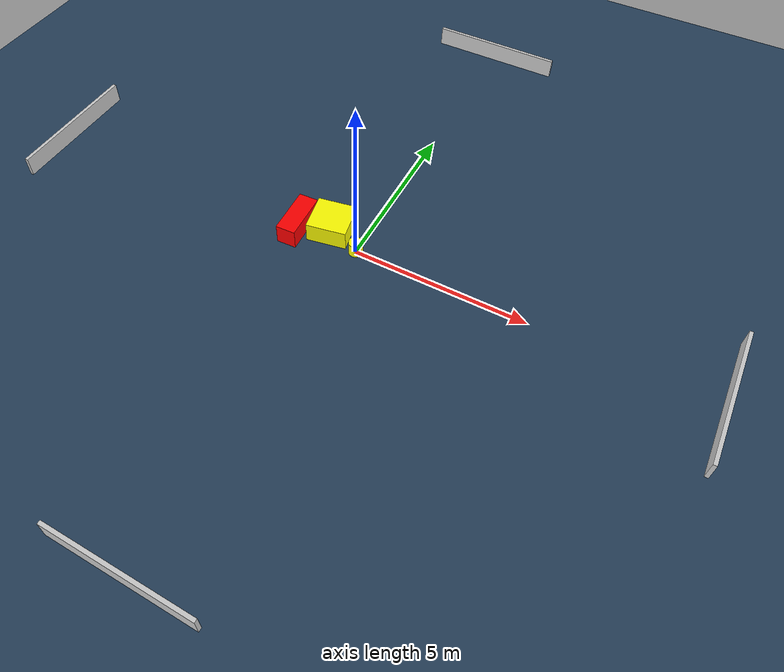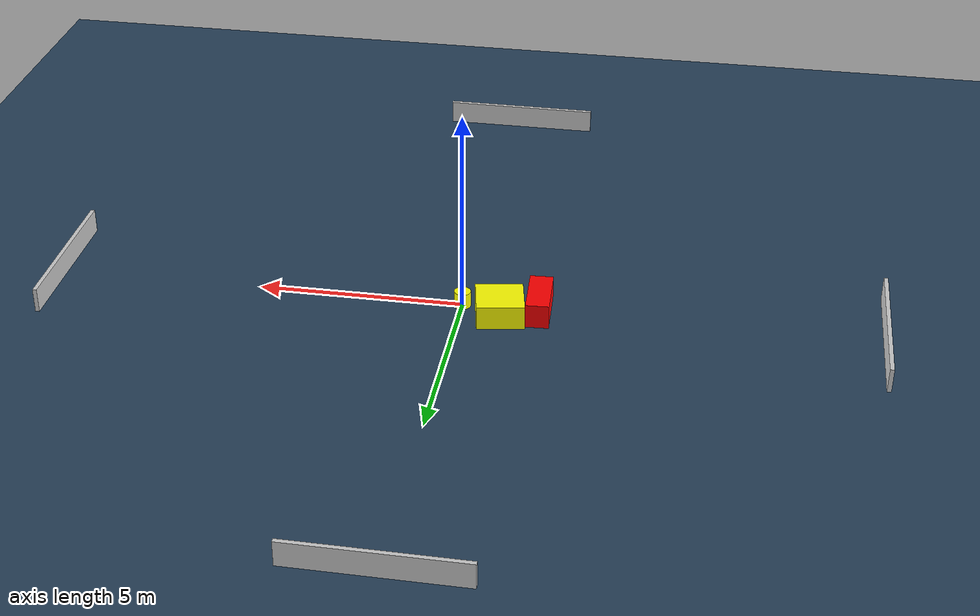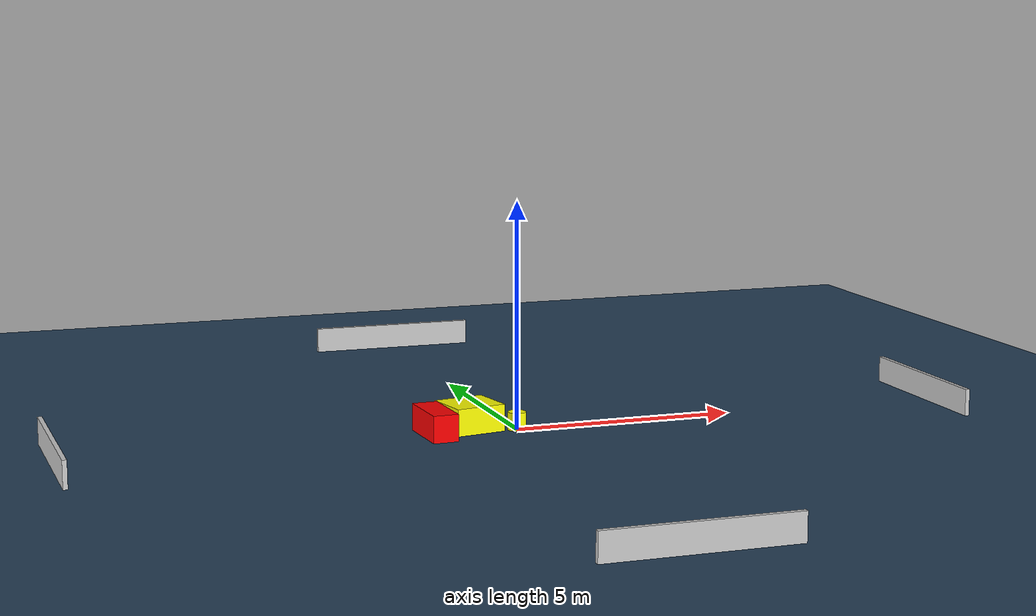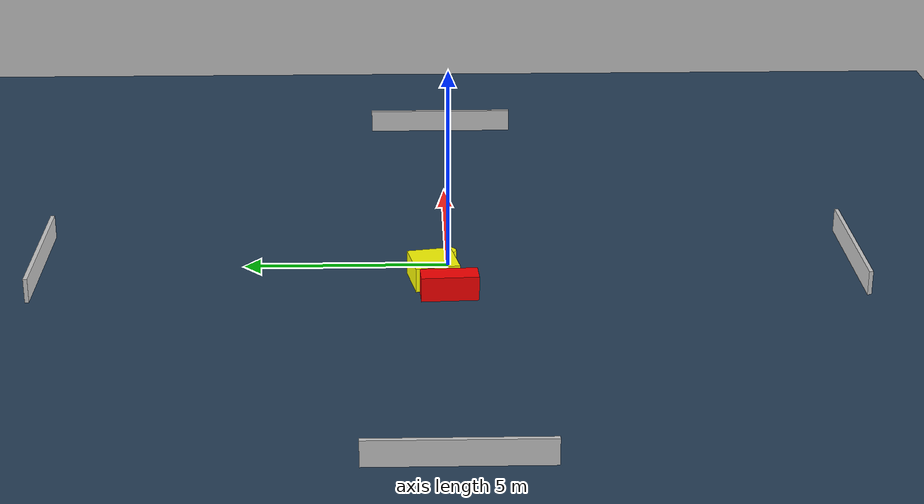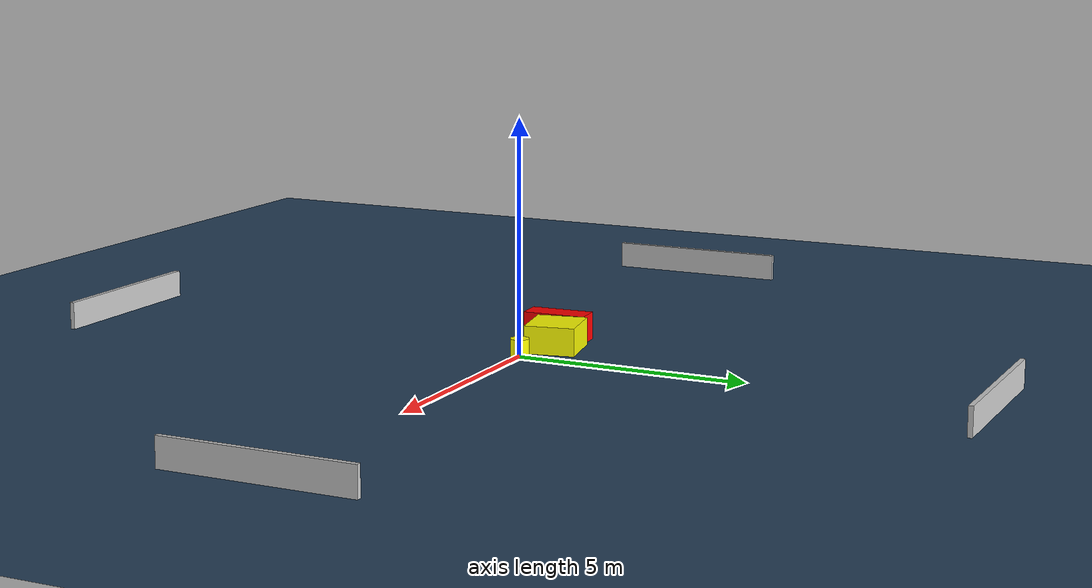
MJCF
<?xml version="1.0" ?>
<mujoco model="generated_environment">
  <option timestep="0.01" integrator="RK4" cone="elliptic"/>
  <default>
    <geom density="1"/>
  </default>
  <asset>
    <texture builtin="gradient" height="3072" name="skybox" rgb1="0.3 0.5 0.7" rgb2="0 0 0" type="skybox" width="512"/>
    <texture builtin="checker" height="300" name="groundplane" rgb1="0.2 0.3 0.4" rgb2="0.1 0.2 0.3" type="2d" width="300"/>
    <material name="groundplane" reflectance="0.2" texrepeat="5 5" texture="groundplane"/>
  </asset>
  <worldbody>
    <light dir="0 0 -1" directional="true" pos="0 0 1.5"/>
    <geom condim="3" friction="0.5 0.005 0.001" material="groundplane" name="floor" pos="0 0 0" size="0 0 0.05" type="plane"/>
    <body name="walls">
      <geom name="wall_1" condim="4" pos="-10.0 0.0 0.3" rgba="0.800000011920929 0.800000011920929 0.800000011920929 1.0" size="0.05 2.0 0.3" type="box"/>
      <geom name="wall_2" condim="4" pos="10.0 0.0 0.3" rgba="0.800000011920929 0.800000011920929 0.800000011920929 1.0" size="0.05 2.0 0.3" type="box"/>
      <geom name="wall_3" condim="4" pos="0.0 -10.0 0.3" rgba="0.800000011920929 0.800000011920929 0.800000011920929 1.0" size="2.0 0.05 0.3" type="box"/>
      <geom name="wall_4" condim="4" pos="0.0 10.0 0.3" rgba="0.800000011920929 0.800000011920929 0.800000011920929 1.0" size="2.0 0.05 0.3" type="box"/>
    </body>
    <body name="robot">
      <joint name="joint_x" type="slide" pos="0 0 0" axis="1 0 0"/>
      <joint name="joint_y" type="slide" pos="0 0 0" axis="0 1 0"/>
      <geom name="robot" type="cylinder" pos="0.0 0.0 0.2" size="0.2 0.2 0.0" mass="5.0" friction="1.0 0.005 0.0001" condim="4" rgba="1.0 1.0 0.0 1.0"/>
    </body>
    <body name="obstacle_1_movable">
      <geom name="obstacle_1_movable" condim="4" pos="-0.9602069533169613 0.377354707027128 0.3" euler="0 0 190.61447788124653" friction="0.0 0.005 0.001" rgba="1.0 1.0 0.0 1.0" size="0.5729220493012082 0.5397413833011538 0.3" type="box" mass="0.1"/>
      <joint type="free"/>
    </body>
    <body name="obstacle_2_static">
      <geom name="obstacle_2_static" condim="4" pos="-1.8593817978152178 0.008312448272770124 0.3" euler="0 0 182.81438060124202" friction="0.0 0.005 0.001" rgba="1.0 0.0 0.0 1.0" size="0.28231612171741893 0.6891544825879968 0.3" type="box"/>
    </body>
  </worldbody>
  <actuator>
    <motor name="actuator_x" joint="joint_x" gear="1" ctrlrange="-1 1"/>
    <motor name="actuator_y" joint="joint_y" gear="1" ctrlrange="-1 1"/>
  </actuator>
</mujoco>
